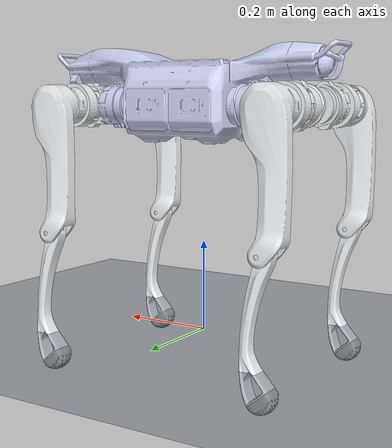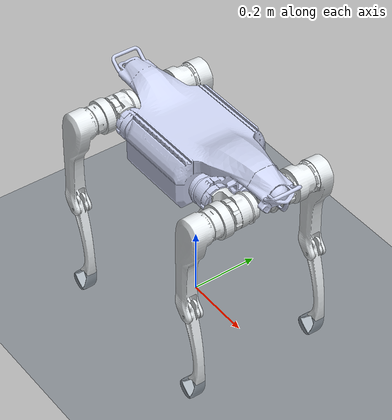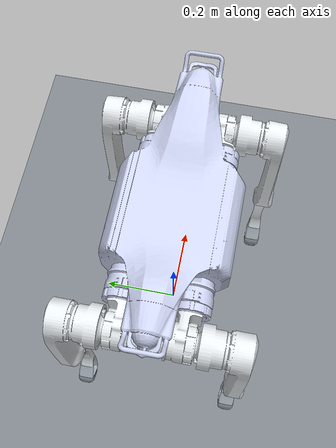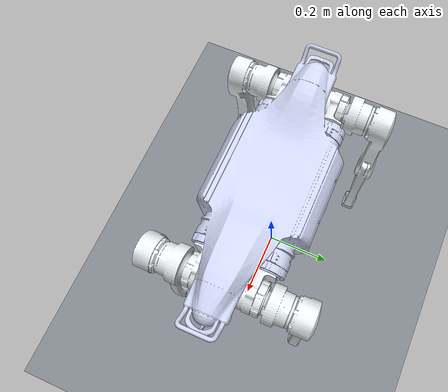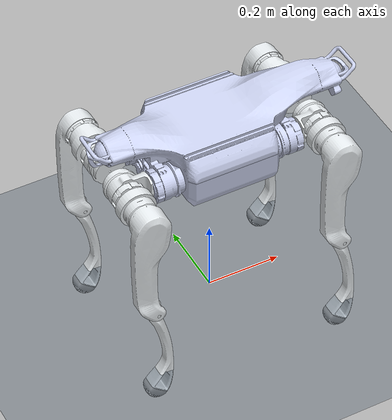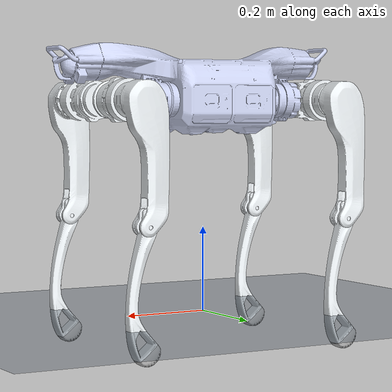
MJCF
<mujoco model="a2">
  <compiler angle="radian" meshdir="../meshes/"/>
  <option gravity="0 0 -9.81"/>

  <default>
      <default class="hip_joint">
        <joint damping="0.2" armature="0.03" frictionloss="1.0" />
      </default>
      <default class="thigh_joint">
        <joint damping="0.2" armature="0.03" frictionloss="1.0" />
      </default>
      <default class="calf_joint">
        <joint damping="1.0" armature="0.03" frictionloss="3.0" />
      </default>
      <default class="collision">
        <geom group="3" priority="1" condim="6"/>
      </default>
      <default class="foot">
          <geom group="3" priority="1" condim="6"/>
      </default>
  </default>

  <asset>
    <texture type="skybox" builtin="gradient" rgb1="0.3 0.5 0.7" rgb2="0 0 0" width="512" height="512" />
    <texture name="texplane" type="2d" builtin="checker" rgb1=".2 .3 .4" rgb2=".1 0.15 0.2" width="512" height="512" mark="cross" markrgb=".8 .8 .8" />
    <material name="matplane" reflectance="0.3" texture="texplane" texrepeat="1 1" texuniform="true" />

    <mesh name="base_link" file="base_link.STL"/>
    <mesh name="left_front_Link1" file="left_front_Link1.STL"/>
    <mesh name="left_front_Link2" file="left_front_Link2.STL"/>
    <mesh name="left_front_Link3" file="left_front_Link3.STL"/>
    <mesh name="left_front_Link4" file="left_front_Link4.STL"/>
    <mesh name="left_hind_Link1" file="left_hind_Link1.STL"/>
    <mesh name="left_hind_Link2" file="left_hind_Link2.STL"/>
    <mesh name="left_hind_Link3" file="left_hind_Link3.STL"/>
    <mesh name="left_hind_Link4" file="left_hind_Link4.STL"/>
    <mesh name="right_front_Link1" file="right_front_Link1.STL"/>
    <mesh name="right_front_Link2" file="right_front_Link2.STL"/>
    <mesh name="right_front_Link3" file="right_front_Link3.STL"/>
    <mesh name="right_front_Link4" file="right_front_Link4.STL"/>
    <mesh name="right_hind_Link1" file="right_hind_Link1.STL"/>
    <mesh name="right_hind_Link2" file="right_hind_Link2.STL"/>
    <mesh name="right_hind_Link3" file="right_hind_Link3.STL"/>
    <mesh name="right_hind_Link4" file="right_hind_Link4.STL"/>
  </asset>

  <worldbody>
    <light directional="true" diffuse=".4 .4 .4" specular="0.1 0.1 0.1" pos="0 0 5.0" dir="0 0 -1" castshadow="false" />
    <light directional="true" diffuse=".6 .6 .6" specular="0.2 0.2 0.2" pos="0 0 4" dir="0 0 -1" />
    <geom name="floor" pos="0 0 0" size="15 15 1" type="plane" material="matplane" margin="0.001" condim="3" friction="1 0.005 0.0001" />

    <body name="trunk" pos="0 0 0.5">
      <inertial pos="0.00698259 -0.000712858 0.0128895" quat="-0.00152907 0.699583 -0.00252986 0.714546" mass="19.651" diaginertia="0.472398 0.407723 0.141627"/>
      <joint name="floating_base_joint" type="free" limited="false" actuatorfrclimited="false"/>
      <site name="imu" pos="-0.0 0 0.0" />
      <geom type="mesh" contype="0" conaffinity="0" group="1" density="0" rgba="0.792157 0.819608 0.933333 1" mesh="base_link"/>
      <geom class="collision" size="0.12 0.14 0.085" pos="0 0 0.007" type="box" rgba="0.792157 0.819608 0.933333 1"/>
      <geom class="collision" size="0.04 0.025 0.01" pos="0.25 0 0.119" type="box" rgba="0.792157 0.819608 0.933333 1"/>
      <geom class="collision" size="0.025 0.015 0.008" pos="-0.22 0 0.119" quat="0.999888 0 -0.0149994 0" type="box" rgba="0.792157 0.819608 0.933333 1"/>
      <geom class="collision" size="0.03 0.05 0.005" pos="0.365 0 0.1" quat="0.939373 0 -0.342898 0" type="box" rgba="0.792157 0.819608 0.933333 1"/>
      <geom class="collision" size="0.0225 0.05 0.005" pos="-0.31 0 0.112" quat="0.939373 0 0.342898 0" type="box" rgba="0.792157 0.819608 0.933333 1"/>
      <body name="FL_hip" pos="0.25944 0.075113 0">
        <inertial pos="-0.002408 -0.01622 0.000239" quat="0.66751 0.421649 0.565191 0.239168" mass="1.62" diaginertia="0.0016644 0.00161602 0.00145995"/>
        <joint name="FL_hip_joint" pos="0 0 0" axis="1 0 0" range="-1.01 1.01" actuatorfrcrange="-120 120" class="hip_joint"/>
        <geom type="mesh" contype="0" conaffinity="0" group="1" density="0" rgba="0.898039 0.917647 0.929412 1" mesh="left_front_Link1"/>
        <body name="FL_thigh" pos="0 0.12779 0">
          <inertial pos="-0.003268 -0.03111 -0.053896" quat="0.993045 0.11348 0.0231928 0.0211279" mass="3.079" diaginertia="0.0293395 0.0280448 0.00383794"/>
          <joint name="FL_thigh_joint" pos="0 0 0" axis="0 1 0" range="-2.34 3.15" actuatorfrcrange="-120 120" class="thigh_joint"/>
          <geom type="mesh" contype="0" conaffinity="0" group="1" density="0" rgba="0.898039 0.917647 0.929412 1" mesh="left_front_Link2"/>
          <geom class="collision" size="0.048 0.06" pos="0 -0.04 0" quat="0.707035 0.707179 0 0" type="cylinder" rgba="0.898039 0.917647 0.929412 1"/>
          <geom class="collision" size="0.0275 0.018 0.085" pos="-0.025 0 -0.09" quat="0.999988 0 0.00499998 0" type="box" rgba="0.898039 0.917647 0.929412 1"/>
          <geom class="collision" size="0.0085 0.025 0.025" pos="-0.022 0 -0.27" quat="0.930508 0 -0.366273 0" type="box" rgba="0.898039 0.917647 0.929412 1"/>
          <body name="FL_calf" pos="0 0 -0.275">
            <inertial pos="0.0102138 -1.99312e-05 -0.136496" quat="0.706884 -0.0119077 -0.0120568 0.707127" mass="0.407" diaginertia="0.00511119 0.00502314 0.000177746"/>
            <joint name="FL_calf_joint" pos="0 0 0" axis="0 1 0" range="-2.77 -0.54" actuatorfrcrange="-180 180" class="calf_joint"/>
            <geom type="mesh" contype="0" conaffinity="0" group="1" density="0" rgba="0.898039 0.917647 0.929412 1" mesh="left_front_Link3"/>
            <geom class="collision" size="0.012 0.015 0.05" pos="0.018 0 -0.08" quat="0.992809 0 -0.119712 0" type="box" rgba="0.898039 0.917647 0.929412 1"/>
            <geom class="collision" size="0.011 0.015 0.04" pos="0.033 0 -0.17" quat="0.999888 0 -0.0149994 0" type="box" rgba="0.898039 0.917647 0.929412 1"/>
            <geom class="collision" size="0.01 0.018 0.03" pos="0.029 0 -0.236" quat="0.995004 0 0.0998334 0" type="box" rgba="0.898039 0.917647 0.929412 1"/>
            <geom class="collision" size="0.005 0.018 0.03" pos="0.008 0 -0.23" quat="0.942755 0 0.333487 0" type="box" rgba="0.898039 0.917647 0.929412 1"/>
            <geom pos="0 0 -0.275" quat="1 0 0 0" type="mesh" contype="0" conaffinity="0" group="1" density="0" rgba="0.698039 0.698039 0.698039 1" mesh="left_front_Link4"/>
            <geom name="LF_FOOT_geom" size="0.032" pos="0 0 -0.275" rgba="0.698039 0.698039 0.698039 1" class="foot"/>
          </body>
        </body>
      </body>
      <body name="RL_hip" pos="-0.25944 0.075113 0">
        <inertial pos="0.00327 -0.01622 -9.7e-05" quat="0.358494 0.383537 0.580824 0.622113" mass="1.62" diaginertia="0.00167848 0.00163116 0.00141504"/>
        <joint name="RL_hip_joint" pos="0 0 0" axis="1 0 0" range="-1.01 1.01" actuatorfrcrange="-120 120" class="hip_joint"/>
        <geom type="mesh" contype="0" conaffinity="0" group="1" density="0" rgba="0.898039 0.917647 0.929412 1" mesh="left_hind_Link1"/>
        <body name="RL_thigh" pos="0 0.12779 0">
          <inertial pos="-0.003268 -0.03111 -0.053896" quat="0.993045 0.11348 0.0231928 0.0211279" mass="3.079" diaginertia="0.0293395 0.0280448 0.00383794"/>
          <joint name="RL_thigh_joint" pos="0 0 0" axis="0 1 0" range="-1.56 3.94" actuatorfrcrange="-120 120" class="thigh_joint"/>
          <geom type="mesh" contype="0" conaffinity="0" group="1" density="0" rgba="0.898039 0.917647 0.929412 1" mesh="left_hind_Link2"/>
          <geom class="collision" size="0.048 0.06" pos="0 -0.04 0" quat="0.707035 0.707179 0 0" type="cylinder" rgba="0.898039 0.917647 0.929412 1"/>
          <geom class="collision" size="0.0275 0.018 0.085" pos="-0.025 0 -0.09" quat="0.999988 0 0.00499998 0" type="box" rgba="0.898039 0.917647 0.929412 1"/>
          <geom class="collision" size="0.0085 0.025 0.025" pos="-0.022 0 -0.27" quat="0.930508 0 -0.366273 0" type="box" rgba="0.898039 0.917647 0.929412 1"/>
          <body name="RL_calf" pos="0 0 -0.275">
            <inertial pos="0.0102138 -1.99312e-05 -0.136496" quat="0.706884 -0.0119077 -0.0120568 0.707127" mass="0.407" diaginertia="0.00511119 0.00502314 0.000177746"/>
            <joint name="RL_calf_joint" pos="0 0 0" axis="0 1 0" range="-2.77 -0.54" actuatorfrcrange="-180 180" class="calf_joint"/>
            <geom type="mesh" contype="0" conaffinity="0" group="1" density="0" rgba="0.898039 0.917647 0.929412 1" mesh="left_hind_Link3"/>
            <geom class="collision" size="0.012 0.015 0.05" pos="0.018 0 -0.08" quat="0.992809 0 -0.119712 0" type="box" rgba="0.898039 0.917647 0.929412 1"/>
            <geom class="collision" size="0.011 0.015 0.04" pos="0.033 0 -0.17" quat="0.999888 0 -0.0149994 0" type="box" rgba="0.898039 0.917647 0.929412 1"/>
            <geom class="collision" size="0.01 0.018 0.03" pos="0.029 0 -0.236" quat="0.995004 0 0.0998334 0" type="box" rgba="0.898039 0.917647 0.929412 1"/>
            <geom class="collision" size="0.005 0.018 0.03" pos="0.008 0 -0.23" quat="0.942755 0 0.333487 0" type="box" rgba="0.898039 0.917647 0.929412 1"/>
            <geom pos="0 0 -0.275" quat="1 0 0 0" type="mesh" contype="0" conaffinity="0" group="1" density="0" rgba="0.698039 0.698039 0.698039 1" mesh="left_hind_Link4"/>
            <geom name="LH_FOOT_geom" size="0.032" pos="0 0 -0.275" rgba="0.698039 0.698039 0.698039 1" class="foot"/>
          </body>
        </body>
      </body>
      <body name="FR_hip" pos="0.25944 -0.075113 0">
        <inertial pos="-0.002465 0.01622 0.000318" quat="0.244263 0.553086 0.449878 0.657299" mass="1.62" diaginertia="0.0016672 0.00160755 0.00146457"/>
        <joint name="FR_hip_joint" pos="0 0 0" axis="1 0 0" range="-1.01 1.01" actuatorfrcrange="-120 120" class="hip_joint"/>
        <geom type="mesh" contype="0" conaffinity="0" group="1" density="0" rgba="0.898039 0.917647 0.929412 1" mesh="right_front_Link1"/>
        <body name="FR_thigh" pos="0 -0.12779 0">
          <inertial pos="-0.003256 0.031125 -0.053921" quat="0.993054 -0.113587 0.0234158 -0.0198545" mass="3.077" diaginertia="0.029323 0.028038 0.00383842"/>
          <joint name="FR_thigh_joint" pos="0 0 0" axis="0 1 0" range="-2.34 3.15" actuatorfrcrange="-120 120" class="thigh_joint"/>
          <geom type="mesh" contype="0" conaffinity="0" group="1" density="0" rgba="0.898039 0.917647 0.929412 1" mesh="right_front_Link2"/>
          <geom class="collision" size="0.048 0.06" pos="0 0.04 0" quat="0.707035 0.707179 0 0" type="cylinder" rgba="0.898039 0.917647 0.929412 1"/>
          <geom class="collision" size="0.0275 0.018 0.085" pos="-0.025 0 -0.09" quat="0.999988 0 0.00499998 0" type="box" rgba="0.898039 0.917647 0.929412 1"/>
          <geom class="collision" size="0.0085 0.025 0.025" pos="-0.022 0 -0.27" quat="0.930508 0 -0.366273 0" type="box" rgba="0.898039 0.917647 0.929412 1"/>
          <body name="FR_calf" pos="0 0 -0.275">
            <inertial pos="0.0102138 1.55479e-05 -0.136496" quat="0.707151 -0.0120743 -0.0118903 0.706859" mass="0.407" diaginertia="0.00511119 0.00502314 0.000177746"/>
            <joint name="FR_calf_joint" pos="0 0 0" axis="0 1 0" range="-2.77 -0.54" actuatorfrcrange="-180 180" class="calf_joint"/>
            <geom type="mesh" contype="0" conaffinity="0" group="1" density="0" rgba="0.898039 0.917647 0.929412 1" mesh="right_front_Link3"/>
            <geom class="collision" size="0.012 0.015 0.05" pos="0.018 0 -0.08" quat="0.992809 0 -0.119712 0" type="box" rgba="0.898039 0.917647 0.929412 1"/>
            <geom class="collision" size="0.011 0.015 0.04" pos="0.033 0 -0.17" quat="0.999888 0 -0.0149994 0" type="box" rgba="0.898039 0.917647 0.929412 1"/>
            <geom class="collision" size="0.01 0.018 0.03" pos="0.029 0 -0.236" quat="0.995004 0 0.0998334 0" type="box" rgba="0.898039 0.917647 0.929412 1"/>
            <geom class="collision" size="0.005 0.018 0.03" pos="0.008 0 -0.23" quat="0.942755 0 0.333487 0" type="box" rgba="0.898039 0.917647 0.929412 1"/>
            <geom pos="0 0 -0.275" quat="1 0 0 0" type="mesh" contype="0" conaffinity="0" group="1" density="0" rgba="0.698039 0.698039 0.698039 1" mesh="right_front_Link4"/>
            <geom name="RF_FOOT_geom" size="0.032" pos="0 0 -0.275" rgba="0.698039 0.698039 0.698039 1" class="foot"/>
          </body>
        </body>
      </body>
      <body name="RR_hip" pos="-0.25944 -0.075113 0">
        <inertial pos="0.00327 0.01622 -3.7e-05" quat="0.616206 0.585144 0.36648 0.378931" mass="1.62" diaginertia="0.00167769 0.00163476 0.00141225"/>
        <joint name="RR_hip_joint" pos="0 0 0" axis="1 0 0" range="-1.01 1.01" actuatorfrcrange="-120 120" class="hip_joint"/>
        <geom type="mesh" contype="0" conaffinity="0" group="1" density="0" rgba="0.898039 0.917647 0.929412 1" mesh="right_hind_Link1"/>
        <body name="RR_thigh" pos="0 -0.12779 0">
          <inertial pos="-0.003256 0.031125 -0.053921" quat="0.993054 -0.113587 0.0234158 -0.0198545" mass="3.077" diaginertia="0.029323 0.028038 0.00383842"/>
          <joint name="RR_thigh_joint" pos="0 0 0" axis="0 1 0" range="-1.56 3.94" actuatorfrcrange="-120 120" class="thigh_joint"/>
          <geom type="mesh" contype="0" conaffinity="0" group="1" density="0" rgba="0.898039 0.917647 0.929412 1" mesh="right_hind_Link2"/>
          <geom class="collision" size="0.048 0.06" pos="0 0.04 0" quat="0.707035 0.707179 0 0" type="cylinder" rgba="0.898039 0.917647 0.929412 1"/>
          <geom class="collision" size="0.0275 0.018 0.085" pos="-0.025 0 -0.09" quat="0.999988 0 0.00499998 0" type="box" rgba="0.898039 0.917647 0.929412 1"/>
          <geom class="collision" size="0.0085 0.025 0.025" pos="-0.022 0 -0.27" quat="0.930508 0 -0.366273 0" type="box" rgba="0.898039 0.917647 0.929412 1"/>
          <body name="RR_calf" pos="0 0 -0.275">
            <inertial pos="0.0102138 1.55479e-05 -0.136496" quat="0.707151 -0.0120743 -0.0118903 0.706859" mass="0.407" diaginertia="0.00511119 0.00502314 0.000177746"/>
            <joint name="RR_calf_joint" pos="0 0 0" axis="0 1 0" range="-2.77 -0.54" actuatorfrcrange="-180 180" class="calf_joint"/>
            <geom type="mesh" contype="0" conaffinity="0" group="1" density="0" rgba="0.898039 0.917647 0.929412 1" mesh="right_hind_Link3"/>
            <geom class="collision" size="0.012 0.015 0.05" pos="0.018 0 -0.08" quat="0.992809 0 -0.119712 0" type="box" rgba="0.898039 0.917647 0.929412 1"/>
            <geom class="collision" size="0.011 0.015 0.04" pos="0.033 0 -0.17" quat="0.999888 0 -0.0149994 0" type="box" rgba="0.898039 0.917647 0.929412 1"/>
            <geom class="collision" size="0.01 0.018 0.03" pos="0.029 0 -0.236" quat="0.995004 0 0.0998334 0" type="box" rgba="0.898039 0.917647 0.929412 1"/>
            <geom class="collision" size="0.005 0.018 0.03" pos="0.008 0 -0.23" quat="0.942755 0 0.333487 0" type="box" rgba="0.898039 0.917647 0.929412 1"/>
            <geom pos="0 0 -0.275" quat="1 0 0 0" type="mesh" contype="0" conaffinity="0" group="1" density="0" rgba="0.698039 0.698039 0.698039 1" mesh="right_hind_Link4"/>
            <geom name="RH_FOOT_geom" size="0.032" pos="0 0 -0.275" rgba="0.698039 0.698039 0.698039 1" class="foot"/>
          </body>
        </body>
      </body>
    </body>
  </worldbody>

  <actuator>
    <motor name="FL_hip"   joint="FL_hip_joint"   gear="1" ctrlrange="-120 120" ctrllimited="true"/>
    <motor name="FL_thigh" joint="FL_thigh_joint" gear="1" ctrlrange="-120 120" ctrllimited="true"/>
    <motor name="FL_calf"  joint="FL_calf_joint"  gear="1" ctrlrange="-180 180" ctrllimited="true"/>
    <motor name="RL_hip"   joint="RL_hip_joint"   gear="1" ctrlrange="-120 120" ctrllimited="true"/>
    <motor name="RL_thigh" joint="RL_thigh_joint" gear="1" ctrlrange="-120 120" ctrllimited="true"/>
    <motor name="RL_calf"  joint="RL_calf_joint"  gear="1" ctrlrange="-180 180" ctrllimited="true"/>
    <motor name="FR_hip"   joint="FR_hip_joint"   gear="1" ctrlrange="-120 120" ctrllimited="true"/>
    <motor name="FR_thigh" joint="FR_thigh_joint" gear="1" ctrlrange="-120 120" ctrllimited="true"/>
    <motor name="FR_calf"  joint="FR_calf_joint"  gear="1" ctrlrange="-180 180" ctrllimited="true"/>
    <motor name="RR_hip"   joint="RR_hip_joint"   gear="1" ctrlrange="-120 120" ctrllimited="true"/>
    <motor name="RR_thigh" joint="RR_thigh_joint" gear="1" ctrlrange="-120 120" ctrllimited="true"/>
    <motor name="RR_calf"  joint="RR_calf_joint"  gear="1" ctrlrange="-180 180" ctrllimited="true"/>
  </actuator>

  <sensor>
    <framequat name="imu_quat" objtype="site" objname="imu" />
    <gyro name="imu_angvel" site="imu" />
    <accelerometer name="imu_linacc" site="imu" />

    <jointpos joint="FL_hip_joint" />
    <jointpos joint="FL_thigh_joint" />
    <jointpos joint="FL_calf_joint" />
    <jointpos joint="RL_hip_joint" />
    <jointpos joint="RL_thigh_joint" />
    <jointpos joint="RL_calf_joint" />
    <jointpos joint="FR_hip_joint" />
    <jointpos joint="FR_thigh_joint" />
    <jointpos joint="FR_calf_joint" />
    <jointpos joint="RR_hip_joint" />
    <jointpos joint="RR_thigh_joint" />
    <jointpos joint="RR_calf_joint" />

    <jointvel joint="FL_hip_joint" />
    <jointvel joint="FL_thigh_joint" />
    <jointvel joint="FL_calf_joint" />
    <jointvel joint="RL_hip_joint" />
    <jointvel joint="RL_thigh_joint" />
    <jointvel joint="RL_calf_joint" />
    <jointvel joint="FR_hip_joint" />
    <jointvel joint="FR_thigh_joint" />
    <jointvel joint="FR_calf_joint" />
    <jointvel joint="RR_hip_joint" />
    <jointvel joint="RR_thigh_joint" />
    <jointvel joint="RR_calf_joint" />

    <framequat name="base_quat" objtype="site" objname="imu" />
    <framepos name="base_pose" objtype="site" objname="imu" />
    <frameangvel name="base_angvel" objtype="site" objname="imu" />
    <framelinvel name="base_linvel" objtype="site" objname="imu" />
  </sensor>

  <keyframe>
    <key name="home" qpos="0 0 0.45 1 0 0 0  0 0.72 -1.44  0 0.72 -1.44  0 0.72 -1.44  0 0.72 -1.44"/>
  </keyframe>
</mujoco>
